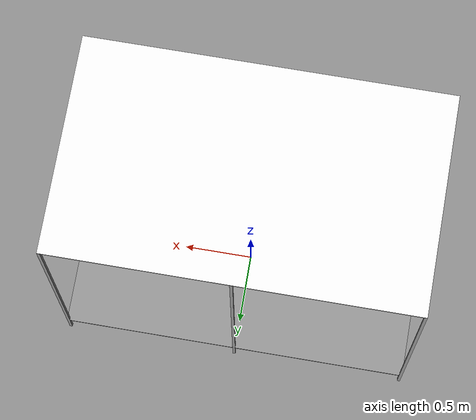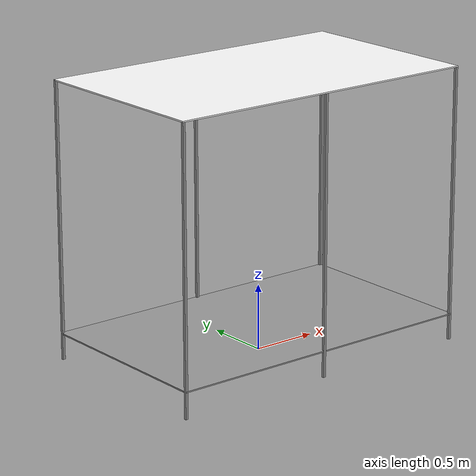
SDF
<?xml version='1.0'?>
<sdf version='1.7'>
  <model name='FlightCage'>
    <link name='ceiling'>
      <pose>0 0 2.1 0 -0 0</pose>
      <inertial>
        <inertia>
          <ixx>506.983</ixx>
          <ixy>0</ixy>
          <ixz>0</ixz>
          <iyy>506.983</iyy>
          <iyz>0</iyz>
          <izz>1013.33</izz>
        </inertia>
        <mass>1520</mass>
        <pose>0 0 0 0 -0 0</pose>
      </inertial>
      <self_collide>0</self_collide>
      <enable_wind>0</enable_wind>
      <kinematic>0</kinematic>
      <gravity>1</gravity>
      <sensor name='ceiling_contact_sensor' type='contact'>
        <always_on>1</always_on>
        <visualize>1</visualize>
        <contact>
          <collision>ceiling_collision</collision>
          <topic>__default_topic__</topic>
        </contact>
        <plugin name='contact_plugin' filename='libgazebo_ros_bumper.so'>
          <bumperTopicName>ceiling_contact</bumperTopicName>
          <frameName>ceiling</frameName>
          <alwaysOn>1</alwaysOn>
          <updateRate>1000</updateRate>
        </plugin>
        <pose>0 0 0 0 -0 0</pose>
      </sensor>
      <visual name='ceiling_visual'>
        <cast_shadows>0</cast_shadows>
        <geometry>
          <box>
            <size>2.5 1.5 0.01</size>
          </box>
        </geometry>
        <material>
          <script>
            <uri>model://FlightCage/materials/scripts</uri>
            <uri>model://FlightCage/materials/textures</uri>
            <name>ceilingMat/Checkerboard</name>
          </script>
          <shader type='pixel'>
            <normal_map>__default__</normal_map>
          </shader>
          <ambient>1 1 1 1</ambient>
          <diffuse>1 1 1 1</diffuse>
          <specular>0 0 0 1</specular>
          <emissive>0 0 0 1</emissive>
        </material>
        <pose>0 0 0 0 -0 0</pose>
        <transparency>0</transparency>
      </visual>
      <collision name='ceiling_collision'>
        <laser_retro>0</laser_retro>
        <max_contacts>10</max_contacts>
        <pose>0 0 0 0 -0 0</pose>
        <geometry>
          <box>
            <size>2.5 1.5 0.01</size>
          </box>
        </geometry>
        <surface>
          <friction>
            <ode>
              <mu>100000</mu>
              <mu2>100000</mu2>
              <fdir1>0 0 0</fdir1>
              <slip1>0</slip1>
              <slip2>0</slip2>
            </ode>
            <torsional>
              <coefficient>1</coefficient>
              <patch_radius>0</patch_radius>
              <surface_radius>0</surface_radius>
              <use_patch_radius>1</use_patch_radius>
              <ode>
                <slip>0</slip>
              </ode>
            </torsional>
          </friction>
          <bounce>
            <restitution_coefficient>0</restitution_coefficient>
            <threshold>1e+06</threshold>
          </bounce>
          <contact>
            <collide_without_contact>0</collide_without_contact>
            <collide_without_contact_bitmask>1</collide_without_contact_bitmask>
            <collide_bitmask>65535</collide_bitmask>
            <ode>
              <soft_cfm>0</soft_cfm>
              <soft_erp>0.2</soft_erp>
              <kp>1e+13</kp>
              <kd>1</kd>
              <max_vel>0.01</max_vel>
              <min_depth>0</min_depth>
            </ode>
            <bullet>
              <split_impulse>1</split_impulse>
              <split_impulse_penetration_threshold>-0.01</split_impulse_penetration_threshold>
              <soft_cfm>0</soft_cfm>
              <soft_erp>0.2</soft_erp>
              <kp>1e+13</kp>
              <kd>1</kd>
            </bullet>
          </contact>
        </surface>
      </collision>
    </link>
    <joint name="ceiling_joint" type="fixed">
      <parent>world</parent>
      <child>ceiling</child>
      <pose>0 0 0 0 0 0</pose>
      <physics>
        <ode>
        </ode>
      </physics>
      <sensor name="force_torque" type="force_torque">
        <always_on>true</always_on>
        <update_rate>1000</update_rate>
      </sensor>
    </joint>

    <link name='floor'>
      <pose>0 0 0.2 0 -0 0</pose>
      <inertial>
        <inertia>
          <ixx>506.983</ixx>
          <ixy>0</ixy>
          <ixz>0</ixz>
          <iyy>506.983</iyy>
          <iyz>0</iyz>
          <izz>1013.33</izz>
        </inertia>
        <mass>1520</mass>
        <pose>0 0 0 0 -0 0</pose>
      </inertial>
      <self_collide>0</self_collide>
      <enable_wind>0</enable_wind>
      <kinematic>0</kinematic>
      <gravity>1</gravity>
      <visual name='floor_visual'>
        <geometry>
          <box>
            <size>2.5 1.5 0.01</size>
          </box>
        </geometry>
        <material>
          <lighting>1</lighting>
          <script>
            <uri>file://media/materials/scripts/gazebo.material</uri>
            <name>Gazebo/Grey</name>
          </script>
          <shader type='pixel'>
            <normal_map>__default__</normal_map>
          </shader>
          <ambient>0.3 0.3 0.3 1</ambient>
          <diffuse>0.7 0.7 0.7 1</diffuse>
          <specular>0.01 0.01 0.01 1</specular>
          <emissive>0 0 0 1</emissive>
        </material>
        <pose>0 0 0 0 -0 0</pose>
        <transparency>0</transparency>
        <cast_shadows>0</cast_shadows>
      </visual>
      <collision name='floor_collision'>
        <laser_retro>0</laser_retro>
        <max_contacts>10</max_contacts>
        <pose>0 0 0 0 -0 0</pose>
        <geometry>
          <box>
            <size>2.5 1.5 0.01</size>
          </box>
        </geometry>
        <surface>
          <friction>
            <ode>
              <mu>1</mu>
              <mu2>1</mu2>
              <fdir1>0 0 0</fdir1>
              <slip1>0</slip1>
              <slip2>0</slip2>
            </ode>
            <torsional>
              <coefficient>1</coefficient>
              <patch_radius>0</patch_radius>
              <surface_radius>0</surface_radius>
              <use_patch_radius>1</use_patch_radius>
              <ode>
                <slip>0</slip>
              </ode>
            </torsional>
          </friction>
          <bounce>
            <restitution_coefficient>0</restitution_coefficient>
            <threshold>1e+06</threshold>
          </bounce>
          <contact>
            <collide_without_contact>0</collide_without_contact>
            <collide_without_contact_bitmask>1</collide_without_contact_bitmask>
            <collide_bitmask>1</collide_bitmask>
            <ode>
              <soft_cfm>0</soft_cfm>
              <soft_erp>0.2</soft_erp>
              <kp>1e+13</kp>
              <kd>1</kd>
              <max_vel>0.01</max_vel>
              <min_depth>0</min_depth>
            </ode>
            <bullet>
              <split_impulse>1</split_impulse>
              <split_impulse_penetration_threshold>-0.01</split_impulse_penetration_threshold>
              <soft_cfm>0</soft_cfm>
              <soft_erp>0.2</soft_erp>
              <kp>1e+13</kp>
              <kd>1</kd>
            </bullet>
          </contact>
        </surface>
      </collision>
    </link>
    <joint name="floor_joint" type="fixed">
      <parent>world</parent>
      <child>floor</child>
      <pose>0 0 0 0 0 0</pose>
      <physics>
        <ode>
        </ode>
      </physics>
    </joint>
    <link name='bar_1'>
      <inertial>
        <mass>6.384</mass>
        <inertia>
          <ixx>2.34633</ixx>
          <ixy>0</ixy>
          <ixz>0</ixz>
          <iyy>2.34633</iyy>
          <iyz>0</iyz>
          <izz>0.0004256</izz>
        </inertia>
        <pose>0 0 0 0 -0 0</pose>
      </inertial>
      <pose>-1.24 -0.74 0 0 -0 0</pose>
      <gravity>0</gravity>
      <self_collide>0</self_collide>
      <kinematic>0</kinematic>
      <enable_wind>0</enable_wind>
      <visual name='visual'>
        <pose>0 0 1.05 0 -0 0</pose>
        <geometry>
          <box>
            <size>0.02 0.02 2.1</size>
          </box>
        </geometry>
        <material>
          <lighting>1</lighting>
          <script>
            <uri>file://media/materials/scripts/gazebo.material</uri>
            <name>Gazebo/Grey</name>
          </script>
          <shader type='pixel'>
            <normal_map>__default__</normal_map>
          </shader>
          <ambient>0.3 0.3 0.3 1</ambient>
          <diffuse>0.7 0.7 0.7 1</diffuse>
          <specular>0.01 0.01 0.01 1</specular>
          <emissive>0 0 0 1</emissive>
        </material>
        <transparency>0</transparency>
        <cast_shadows>0</cast_shadows>
      </visual>
    </link>
    <link name='bar_2'>
      <inertial>
        <mass>6.384</mass>
        <inertia>
          <ixx>2.34633</ixx>
          <ixy>0</ixy>
          <ixz>0</ixz>
          <iyy>2.34633</iyy>
          <iyz>0</iyz>
          <izz>0.0004256</izz>
        </inertia>
        <pose>0 0 0 0 -0 0</pose>
      </inertial>
      <pose>1.24 -0.74 0 0 -0 0</pose>
      <gravity>0</gravity>
      <self_collide>0</self_collide>
      <kinematic>0</kinematic>
      <enable_wind>0</enable_wind>
      <visual name='visual'>
        <pose>0 0 1.05 0 -0 0</pose>
        <geometry>
          <box>
            <size>0.02 0.02 2.1</size>
          </box>
        </geometry>
        <material>
          <lighting>1</lighting>
          <script>
            <uri>file://media/materials/scripts/gazebo.material</uri>
            <name>Gazebo/Grey</name>
          </script>
          <shader type='pixel'>
            <normal_map>__default__</normal_map>
          </shader>
          <ambient>0.3 0.3 0.3 1</ambient>
          <diffuse>0.7 0.7 0.7 1</diffuse>
          <specular>0.01 0.01 0.01 1</specular>
          <emissive>0 0 0 1</emissive>
        </material>
        <transparency>0</transparency>
        <cast_shadows>0</cast_shadows>
      </visual>
    </link>
    <link name='bar_3'>
      <inertial>
        <mass>6.384</mass>
        <inertia>
          <ixx>2.34633</ixx>
          <ixy>0</ixy>
          <ixz>0</ixz>
          <iyy>2.34633</iyy>
          <iyz>0</iyz>
          <izz>0.0004256</izz>
        </inertia>
        <pose>0 0 0 0 -0 0</pose>
      </inertial>
      <pose>-1.24 0.74 0 0 -0 0</pose>
      <gravity>0</gravity>
      <self_collide>0</self_collide>
      <kinematic>0</kinematic>
      <enable_wind>0</enable_wind>
      <visual name='visual'>
        <pose>0 0 1.05 0 -0 0</pose>
        <geometry>
          <box>
            <size>0.02 0.02 2.1</size>
          </box>
        </geometry>
        <material>
          <lighting>1</lighting>
          <script>
            <uri>file://media/materials/scripts/gazebo.material</uri>
            <name>Gazebo/Grey</name>
          </script>
          <shader type='pixel'>
            <normal_map>__default__</normal_map>
          </shader>
          <ambient>0.3 0.3 0.3 1</ambient>
          <diffuse>0.7 0.7 0.7 1</diffuse>
          <specular>0.01 0.01 0.01 1</specular>
          <emissive>0 0 0 1</emissive>
        </material>
        <transparency>0</transparency>
        <cast_shadows>0</cast_shadows>
      </visual>
    </link>
    <link name='bar_4'>
      <inertial>
        <mass>6.384</mass>
        <inertia>
          <ixx>2.34633</ixx>
          <ixy>0</ixy>
          <ixz>0</ixz>
          <iyy>2.34633</iyy>
          <iyz>0</iyz>
          <izz>0.0004256</izz>
        </inertia>
        <pose>0 0 0 0 -0 0</pose>
      </inertial>
      <pose>1.24 0.74 0 0 -0 0</pose>
      <gravity>0</gravity>
      <self_collide>0</self_collide>
      <kinematic>0</kinematic>
      <enable_wind>0</enable_wind>
      <visual name='visual'>
        <pose>0 0 1.05 0 -0 0</pose>
        <geometry>
          <box>
            <size>0.02 0.02 2.1</size>
          </box>
        </geometry>
        <material>
          <lighting>1</lighting>
          <script>
            <uri>file://media/materials/scripts/gazebo.material</uri>
            <name>Gazebo/Grey</name>
          </script>
          <shader type='pixel'>
            <normal_map>__default__</normal_map>
          </shader>
          <ambient>0.3 0.3 0.3 1</ambient>
          <diffuse>0.7 0.7 0.7 1</diffuse>
          <specular>0.01 0.01 0.01 1</specular>
          <emissive>0 0 0 1</emissive>
        </material>
        <transparency>0</transparency>
        <cast_shadows>0</cast_shadows>
      </visual>
    </link>
    <link name='bar_5'>
      <inertial>
        <mass>6.384</mass>
        <inertia>
          <ixx>2.34633</ixx>
          <ixy>0</ixy>
          <ixz>0</ixz>
          <iyy>2.34633</iyy>
          <iyz>0</iyz>
          <izz>0.0004256</izz>
        </inertia>
        <pose>0 0 0 0 -0 0</pose>
      </inertial>
      <pose>0 0.74 0 0 -0 0</pose>
      <gravity>0</gravity>
      <self_collide>0</self_collide>
      <kinematic>0</kinematic>
      <enable_wind>0</enable_wind>
      <visual name='visual'>
        <pose>0 0 1.05 0 -0 0</pose>
        <geometry>
          <box>
            <size>0.02 0.02 2.1</size>
          </box>
        </geometry>
        <material>
          <lighting>1</lighting>
          <script>
            <uri>file://media/materials/scripts/gazebo.material</uri>
            <name>Gazebo/Grey</name>
          </script>
          <shader type='pixel'>
            <normal_map>__default__</normal_map>
          </shader>
          <ambient>0.3 0.3 0.3 1</ambient>
          <diffuse>0.7 0.7 0.7 1</diffuse>
          <specular>0.01 0.01 0.01 1</specular>
          <emissive>0 0 0 1</emissive>
        </material>
        <transparency>0</transparency>
        <cast_shadows>0</cast_shadows>
      </visual>
    </link>
    <link name='bar_6'>
      <inertial>
        <mass>6.384</mass>
        <inertia>
          <ixx>2.34633</ixx>
          <ixy>0</ixy>
          <ixz>0</ixz>
          <iyy>2.34633</iyy>
          <iyz>0</iyz>
          <izz>0.0004256</izz>
        </inertia>
        <pose>0 0 0 0 -0 0</pose>
      </inertial>
      <pose>0 -0.74 0 0 -0 0</pose>
      <gravity>0</gravity>
      <self_collide>0</self_collide>
      <kinematic>0</kinematic>
      <enable_wind>0</enable_wind>
      <visual name='visual'>
        <pose>0 0 1.05 0 -0 0</pose>
        <geometry>
          <box>
            <size>0.02 0.02 2.1</size>
          </box>
        </geometry>
        <material>
          <lighting>1</lighting>
          <script>
            <uri>file://media/materials/scripts/gazebo.material</uri>
            <name>Gazebo/Grey</name>
          </script>
          <shader type='pixel'>
            <normal_map>__default__</normal_map>
          </shader>
          <ambient>0.3 0.3 0.3 1</ambient>
          <diffuse>0.7 0.7 0.7 1</diffuse>
          <specular>0.01 0.01 0.01 1</specular>
          <emissive>0 0 0 1</emissive>
        </material>
        <transparency>0</transparency>
        <cast_shadows>0</cast_shadows>
      </visual>
    </link>
    <static>0</static>
    <allow_auto_disable>1</allow_auto_disable>
  </model>
</sdf>
